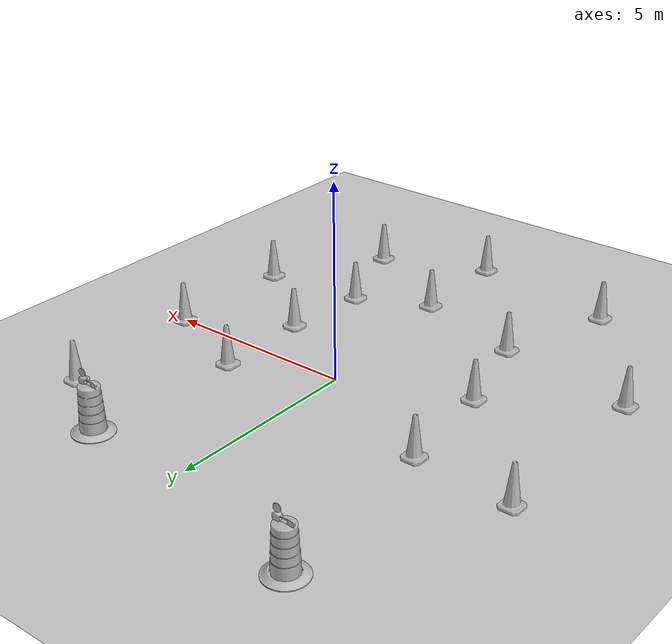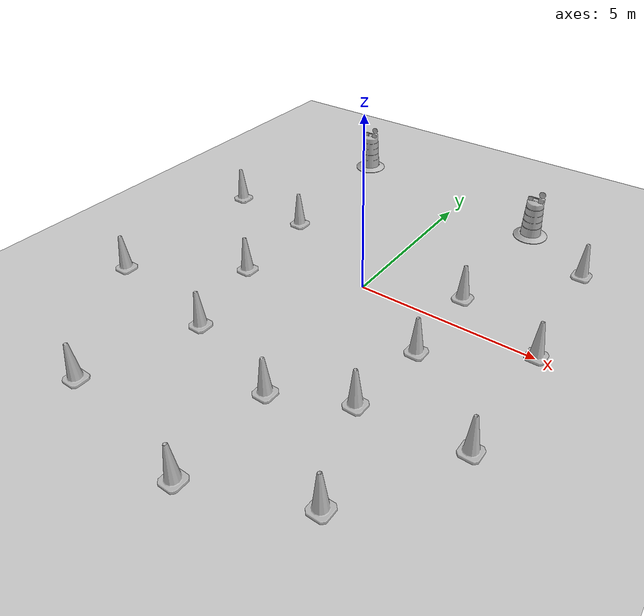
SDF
<sdf version="1.7">
 <world name="default">
  <light name="sun" type="directional">
   <pose>0 0 10 0 -0 0</pose>
   <diffuse>0.8 0.8 0.8 1</diffuse>
   <specular>0.2 0.2 0.2 1</specular>
   <attenuation>
    <range>1000</range>
    <constant>0.9</constant>
    <linear>0.01</linear>
    <quadratic>0.001</quadratic>
   </attenuation>
   <direction>-0.5 0.1 -0.9</direction>
   <spot><inner_angle>0</inner_angle><outer_angle>0</outer_angle><falloff>0</falloff></spot>
  </light>
  <model name="ground_plane">
   <static>1</static>
   <link name="link">
    <collision name="collision">
     <geometry><plane><normal>0 0 1</normal><size>100 100</size></plane></geometry>
     <surface><friction><ode><mu>100</mu><mu2>50</mu2></ode></friction></surface>
    </collision>
    <visual name="visual">
     <cast_shadows>0</cast_shadows>
     <geometry><plane><normal>0 0 1</normal><size>100 100</size></plane></geometry>
     <material>
      <script><uri>file://media/materials/scripts/gazebo.material</uri><name>Gazebo/Grey</name></script>
     </material>
    </visual>
   </link>
  </model>
  <gravity>0 0 -9.8</gravity>
  <magnetic_field>6e-06 2.3e-05 -4.2e-05</magnetic_field>
  <atmosphere type="adiabatic"/>
  <physics type="ode">
   <max_step_size>0.001</max_step_size>
   <real_time_factor>1</real_time_factor>
   <real_time_update_rate>1000</real_time_update_rate>
  </physics>
  <scene><ambient>0.4 0.4 0.4 1</ambient><background>0.7 0.7 0.7 1</background><shadows>1</shadows></scene>
  <spherical_coordinates>
   <surface_model>EARTH_WGS84</surface_model>
   <latitude_deg>0</latitude_deg>
   <longitude_deg>0</longitude_deg>
   <elevation>0</elevation>
   <heading_deg>0</heading_deg>
  </spherical_coordinates>
  <model name="Construction Cone">
   <link name="link">
    <collision name="collision">
     <geometry>
      <mesh><scale>10 10 10</scale><uri>model://construction_cone/meshes/construction_cone.dae</uri></mesh>
     </geometry>
    </collision>
    <visual name="visual">
     <geometry>
      <mesh><scale>10 10 10</scale><uri>model://construction_cone/meshes/construction_cone.dae</uri></mesh>
     </geometry>
    </visual>
    <inertial>
     <inertia><ixx>1</ixx><ixy>0</ixy><ixz>0</ixz><iyy>1</iyy><iyz>0</iyz><izz>1</izz></inertia>
     <mass>1</mass>
    </inertial>
   </link>
   <pose>2.498 1.07491 -0 0 -1e-06 0</pose>
  </model>
  <model name="Construction Cone_0">
   <link name="link">
    <collision name="collision">
     <geometry>
      <mesh><scale>10 10 10</scale><uri>model://construction_cone/meshes/construction_cone.dae</uri></mesh>
     </geometry>
    </collision>
    <visual name="visual">
     <geometry>
      <mesh><scale>10 10 10</scale><uri>model://construction_cone/meshes/construction_cone.dae</uri></mesh>
     </geometry>
    </visual>
    <inertial>
     <inertia><ixx>1</ixx><ixy>0</ixy><ixz>0</ixz><iyy>1</iyy><iyz>0</iyz><izz>1</izz></inertia>
     <mass>1</mass>
    </inertial>
   </link>
   <pose>2.56386 -1.46665 -0 0 -0 0</pose>
  </model>
  <model name="Construction Cone_1">
   <link name="link">
    <collision name="collision">
     <geometry>
      <mesh><scale>10 10 10</scale><uri>model://construction_cone/meshes/construction_cone.dae</uri></mesh>
     </geometry>
    </collision>
    <visual name="visual">
     <geometry>
      <mesh><scale>10 10 10</scale><uri>model://construction_cone/meshes/construction_cone.dae</uri></mesh>
     </geometry>
    </visual>
    <inertial>
     <inertia><ixx>1</ixx><ixy>0</ixy><ixz>0</ixz><iyy>1</iyy><iyz>0</iyz><izz>1</izz></inertia>
     <mass>1</mass>
    </inertial>
   </link>
   <pose>4.99464 0.055015 -0 0 -0 0</pose>
  </model>
  <model name="Construction Cone_2">
   <link name="link">
    <collision name="collision">
     <geometry>
      <mesh><scale>10 10 10</scale><uri>model://construction_cone/meshes/construction_cone.dae</uri></mesh>
     </geometry>
    </collision>
    <visual name="visual">
     <geometry>
      <mesh><scale>10 10 10</scale><uri>model://construction_cone/meshes/construction_cone.dae</uri></mesh>
     </geometry>
    </visual>
    <inertial>
     <inertia><ixx>1</ixx><ixy>0</ixy><ixz>0</ixz><iyy>1</iyy><iyz>0</iyz><izz>1</izz></inertia>
     <mass>1</mass>
    </inertial>
   </link>
   <pose>2.35175 -3.71763 -0 0 -0 0</pose>
  </model>
  <model name="Construction Cone_3">
   <link name="link">
    <collision name="collision">
     <geometry>
      <mesh><scale>10 10 10</scale><uri>model://construction_cone/meshes/construction_cone.dae</uri></mesh>
     </geometry>
    </collision>
    <visual name="visual">
     <geometry>
      <mesh><scale>10 10 10</scale><uri>model://construction_cone/meshes/construction_cone.dae</uri></mesh>
     </geometry>
    </visual>
    <inertial>
     <inertia><ixx>1</ixx><ixy>0</ixy><ixz>0</ixz><iyy>1</iyy><iyz>0</iyz><izz>1</izz></inertia>
     <mass>1</mass>
    </inertial>
   </link>
   <pose>0.492837 -4.58805 -0 0 -0 0</pose>
  </model>
  <model name="Construction Cone_4">
   <link name="link">
    <collision name="collision">
     <geometry>
      <mesh><scale>10 10 10</scale><uri>model://construction_cone/meshes/construction_cone.dae</uri></mesh>
     </geometry>
    </collision>
    <visual name="visual">
     <geometry>
      <mesh><scale>10 10 10</scale><uri>model://construction_cone/meshes/construction_cone.dae</uri></mesh>
     </geometry>
    </visual>
    <inertial>
     <inertia><ixx>1</ixx><ixy>0</ixy><ixz>0</ixz><iyy>1</iyy><iyz>0</iyz><izz>1</izz></inertia>
     <mass>1</mass>
    </inertial>
   </link>
   <pose>-2.41899 -3.74735 -9e-06 0 -0 0</pose>
  </model>
  <model name="Construction Cone_5">
   <link name="link">
    <collision name="collision">
     <geometry>
      <mesh><scale>10 10 10</scale><uri>model://construction_cone/meshes/construction_cone.dae</uri></mesh>
     </geometry>
    </collision>
    <visual name="visual">
     <geometry>
      <mesh><scale>10 10 10</scale><uri>model://construction_cone/meshes/construction_cone.dae</uri></mesh>
     </geometry>
    </visual>
    <inertial>
     <inertia><ixx>1</ixx><ixy>0</ixy><ixz>0</ixz><iyy>1</iyy><iyz>0</iyz><izz>1</izz></inertia>
     <mass>1</mass>
    </inertial>
   </link>
   <pose>-3.47314 1.56871 -8e-06 -1e-06 -4e-06 0</pose>
  </model>
  <model name="Construction Cone_6">
   <link name="link">
    <collision name="collision">
     <geometry>
      <mesh><scale>10 10 10</scale><uri>model://construction_cone/meshes/construction_cone.dae</uri></mesh>
     </geometry>
    </collision>
    <visual name="visual">
     <geometry>
      <mesh><scale>10 10 10</scale><uri>model://construction_cone/meshes/construction_cone.dae</uri></mesh>
     </geometry>
    </visual>
    <inertial>
     <inertia><ixx>1</ixx><ixy>0</ixy><ixz>0</ixz><iyy>1</iyy><iyz>0</iyz><izz>1</izz></inertia>
     <mass>1</mass>
    </inertial>
   </link>
   <pose>5.01541 -3.41574 -1e-05 -1e-06 0 0</pose>
  </model>
  <model name="Construction Cone_7">
   <link name="link">
    <collision name="collision">
     <geometry>
      <mesh><scale>10 10 10</scale><uri>model://construction_cone/meshes/construction_cone.dae</uri></mesh>
     </geometry>
    </collision>
    <visual name="visual">
     <geometry>
      <mesh><scale>10 10 10</scale><uri>model://construction_cone/meshes/construction_cone.dae</uri></mesh>
     </geometry>
    </visual>
    <inertial>
     <inertia><ixx>1</ixx><ixy>0</ixy><ixz>0</ixz><iyy>1</iyy><iyz>0</iyz><izz>1</izz></inertia>
     <mass>1</mass>
    </inertial>
   </link>
   <pose>3.33204 -6.24749 -0 0 -0 0</pose>
  </model>
  <model name="Construction Cone_8">
   <link name="link">
    <collision name="collision">
     <geometry>
      <mesh><scale>10 10 10</scale><uri>model://construction_cone/meshes/construction_cone.dae</uri></mesh>
     </geometry>
    </collision>
    <visual name="visual">
     <geometry>
      <mesh><scale>10 10 10</scale><uri>model://construction_cone/meshes/construction_cone.dae</uri></mesh>
     </geometry>
    </visual>
    <inertial>
     <inertia><ixx>1</ixx><ixy>0</ixy><ixz>0</ixz><iyy>1</iyy><iyz>0</iyz><izz>1</izz></inertia>
     <mass>1</mass>
    </inertial>
   </link>
   <pose>0.577911 -7.39151 -0 0 -0 0</pose>
  </model>
  <model name="Construction Cone_9">
   <link name="link">
    <collision name="collision">
     <geometry>
      <mesh><scale>10 10 10</scale><uri>model://construction_cone/meshes/construction_cone.dae</uri></mesh>
     </geometry>
    </collision>
    <visual name="visual">
     <geometry>
      <mesh><scale>10 10 10</scale><uri>model://construction_cone/meshes/construction_cone.dae</uri></mesh>
     </geometry>
    </visual>
    <inertial>
     <inertia><ixx>1</ixx><ixy>0</ixy><ixz>0</ixz><iyy>1</iyy><iyz>0</iyz><izz>1</izz></inertia>
     <mass>1</mass>
    </inertial>
   </link>
   <pose>-3.37227 -6.74834 0 -0 -0 -0</pose>
  </model>
  <model name="Construction Cone_10">
   <link name="link">
    <collision name="collision">
     <geometry>
      <mesh><scale>10 10 10</scale><uri>model://construction_cone/meshes/construction_cone.dae</uri></mesh>
     </geometry>
    </collision>
    <visual name="visual">
     <geometry>
      <mesh><scale>10 10 10</scale><uri>model://construction_cone/meshes/construction_cone.dae</uri></mesh>
     </geometry>
    </visual>
    <inertial>
     <inertia><ixx>1</ixx><ixy>0</ixy><ixz>0</ixz><iyy>1</iyy><iyz>0</iyz><izz>1</izz></inertia>
     <mass>1</mass>
    </inertial>
   </link>
   <pose>-6.00141 -3.15418 -0 1e-06 -0 0</pose>
  </model>
  <model name="Construction Cone_11">
   <link name="link">
    <collision name="collision">
     <geometry>
      <mesh><scale>10 10 10</scale><uri>model://construction_cone/meshes/construction_cone.dae</uri></mesh>
     </geometry>
    </collision>
    <visual name="visual">
     <geometry>
      <mesh><scale>10 10 10</scale><uri>model://construction_cone/meshes/construction_cone.dae</uri></mesh>
     </geometry>
    </visual>
    <inertial>
     <inertia><ixx>1</ixx><ixy>0</ixy><ixz>0</ixz><iyy>1</iyy><iyz>0</iyz><izz>1</izz></inertia>
     <mass>1</mass>
    </inertial>
   </link>
   <pose>-6.06718 1.78188 -0 0 -0 0</pose>
  </model>
  <model name="Construction Barrel">
   <link name="link">
    <inertial>
     <pose>0 0 0.4 0 -0 0</pose>
     <mass>500</mass>
     <inertia><ixx>51.2096</ixx><iyy>51.2096</iyy><izz>25</izz><ixy>0</ixy><ixz>0</ixz><iyz>0</iyz></inertia>
    </inertial>
    <collision name="collision">
     <geometry><mesh><uri>model://construction_barrel/meshes/construction_barrel.dae</uri></mesh></geometry>
    </collision>
    <visual name="visual">
     <geometry><mesh><uri>model://construction_barrel/meshes/construction_barrel.dae</uri></mesh></geometry>
    </visual>
   </link>
   <pose>2.70328 5.15659 1e-06 3e-06 2e-06 -9e-06</pose>
  </model>
  <model name="Construction Barrel_0">
   <link name="link">
    <inertial>
     <pose>0 0 0.4 0 -0 0</pose>
     <mass>500</mass>
     <inertia><ixx>51.2096</ixx><iyy>51.2096</iyy><izz>25</izz><ixy>0</ixy><ixz>0</ixz><iyz>0</iyz></inertia>
    </inertial>
    <collision name="collision">
     <geometry><mesh><uri>model://construction_barrel/meshes/construction_barrel.dae</uri></mesh></geometry>
    </collision>
    <visual name="visual">
     <geometry><mesh><uri>model://construction_barrel/meshes/construction_barrel.dae</uri></mesh></geometry>
    </visual>
   </link>
   <pose>-3.93712 6.25273 0 0 0 -7e-06</pose>
  </model>
  <model name="Construction Cone_12">
   <link name="link">
    <collision name="collision">
     <geometry>
      <mesh><scale>10 10 10</scale><uri>model://construction_cone/meshes/construction_cone.dae</uri></mesh>
     </geometry>
    </collision>
    <visual name="visual">
     <geometry>
      <mesh><scale>10 10 10</scale><uri>model://construction_cone/meshes/construction_cone.dae</uri></mesh>
     </geometry>
    </visual>
    <inertial>
     <inertia><ixx>1</ixx><ixy>0</ixy><ixz>0</ixz><iyy>1</iyy><iyz>0</iyz><izz>1</izz></inertia>
     <mass>1</mass>
    </inertial>
   </link>
   <pose>-3.11893 -1.23775 -4e-06 -3e-06 1e-06 0</pose>
  </model>
  <model name="Construction Cone_13">
   <link name="link">
    <collision name="collision">
     <geometry>
      <mesh><scale>10 10 10</scale><uri>model://construction_cone/meshes/construction_cone.dae</uri></mesh>
     </geometry>
    </collision>
    <visual name="visual">
     <geometry>
      <mesh><scale>10 10 10</scale><uri>model://construction_cone/meshes/construction_cone.dae</uri></mesh>
     </geometry>
    </visual>
    <inertial>
     <inertia><ixx>1</ixx><ixy>0</ixy><ixz>0</ixz><iyy>1</iyy><iyz>0</iyz><izz>1</izz></inertia>
     <mass>1</mass>
    </inertial>
   </link>
   <pose>4.74917 3.89845 -0 0 -0 0</pose>
  </model>
 </world>
</sdf>
